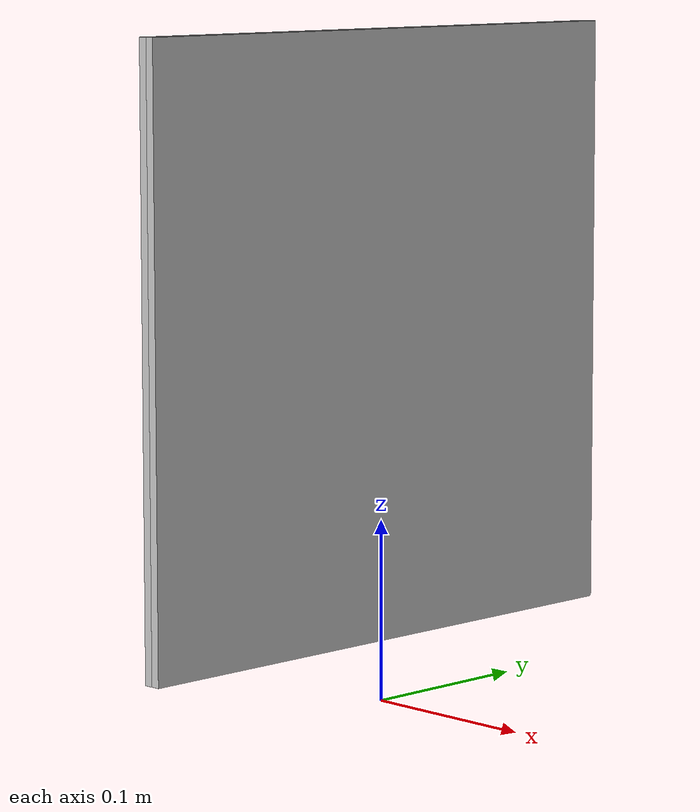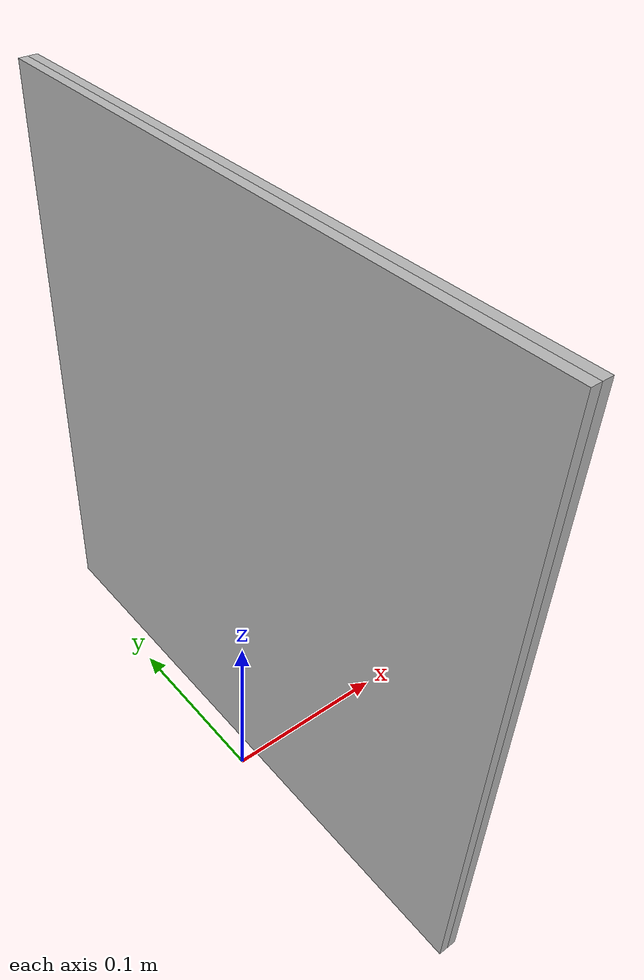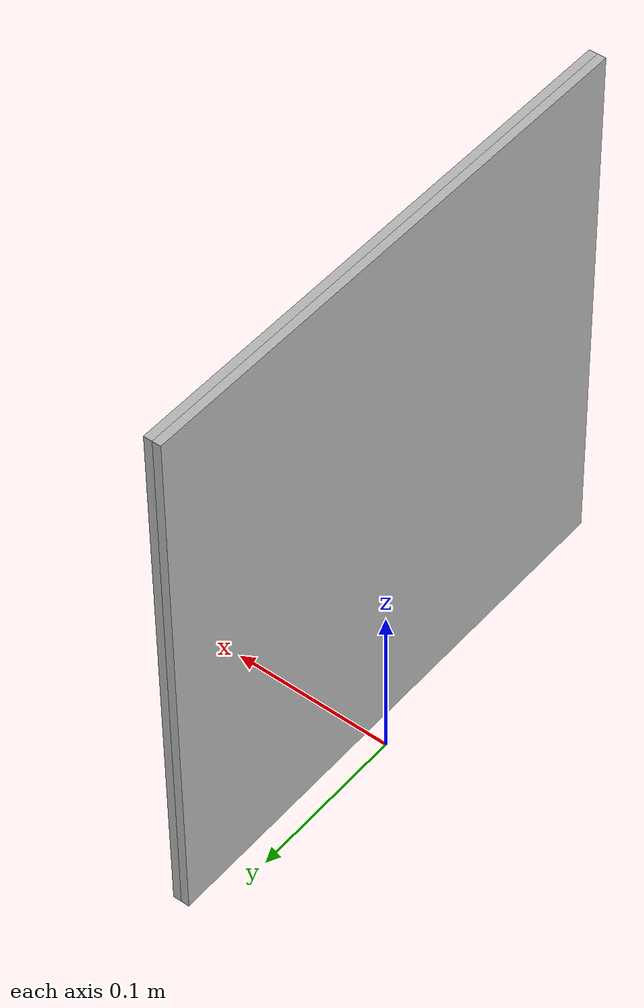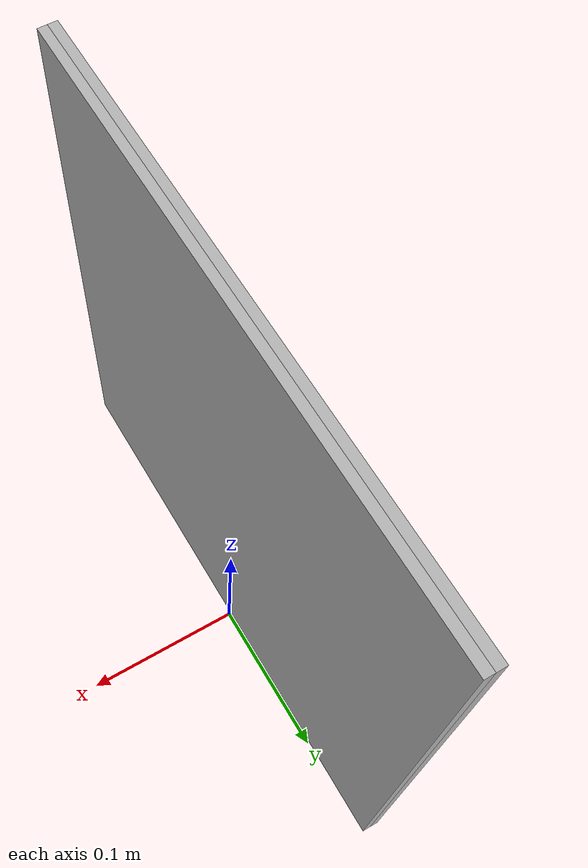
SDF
<?xml version="1.0"?>
 			<sdf version="1.6">
 			<model name="Aruco tag0">
 				<static>true</static>
 				<link name="robot_link">
           <visual name="front_visual">
             <pose>-0.0025 0 0.2 0 0 0 </pose>
               <geometry>
                 <box>
                   <size>0.005 0.33 0.33 </size>
                 </box>
               </geometry>
               <material> <!-- Body material -->
                 <script>
                   <uri>model://tag_0/materials/scripts/tag.material</uri>
                   <name>aruco_tag_0</name>
                 </script>
               </material> <!-- End Body Material -->
           </visual>
           <visual name="rear_visual">
             <pose>0.0025 0 0.2 0 0 0 </pose>
               <geometry>
                 <box>
                   <size>0.005 0.33 0.33 </size>
                 </box>
               </geometry>
           </visual>
 				</link>
 			</model>
 			</sdf>
